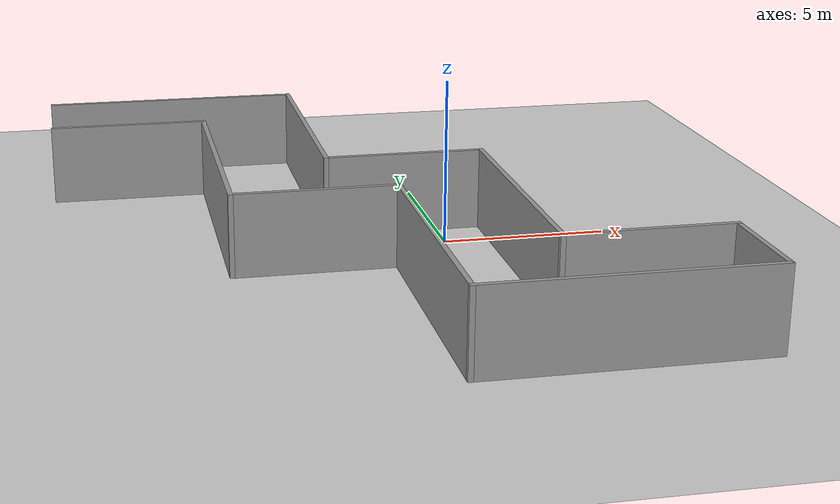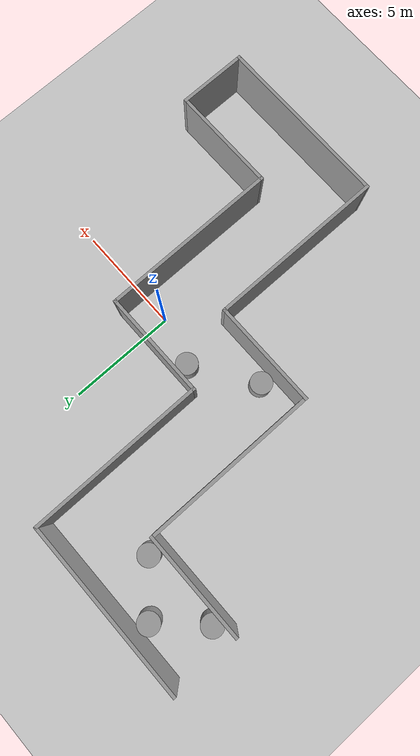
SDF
<sdf version="1.6">
 <world name="default">
  <light name="sun" type="directional">
   <pose>0 0 10 0 -0 0</pose>
   <diffuse>0.8 0.8 0.8 1</diffuse>
   <specular>0.2 0.2 0.2 1</specular>
   <attenuation>
    <range>1000</range>
    <constant>0.9</constant>
    <linear>0.01</linear>
    <quadratic>0.001</quadratic>
   </attenuation>
   <direction>-0.5 0.1 -0.9</direction>
  </light>
  <model name="ground_plane">
   <static>1</static>
   <link name="link">
    <collision name="collision">
     <geometry><plane><normal>0 0 1</normal><size>100 100</size></plane></geometry>
     <surface><friction><ode><mu>100</mu><mu2>50</mu2></ode></friction></surface>
    </collision>
    <visual name="visual">
     <cast_shadows>0</cast_shadows>
     <geometry><plane><normal>0 0 1</normal><size>100 100</size></plane></geometry>
     <material>
      <script><uri>file://media/materials/scripts/gazebo.material</uri><name>Gazebo/Grey</name></script>
     </material>
    </visual>
   </link>
  </model>
  <gravity>0 0 -9.8</gravity>
  <magnetic_field>6e-06 2.3e-05 -4.2e-05</magnetic_field>
  <atmosphere type="adiabatic"/>
  <physics name="default_physics" default="0" type="ode">
   <max_step_size>0.001</max_step_size>
   <real_time_factor>1</real_time_factor>
   <real_time_update_rate>1000</real_time_update_rate>
  </physics>
  <scene><ambient>0.4 0.4 0.4 1</ambient><background>0.7 0.7 0.7 1</background><shadows>1</shadows></scene>
  <spherical_coordinates>
   <surface_model>EARTH_WGS84</surface_model>
   <latitude_deg>0</latitude_deg>
   <longitude_deg>0</longitude_deg>
   <elevation>0</elevation>
   <heading_deg>0</heading_deg>
  </spherical_coordinates>
  <model name="zigzagwall">
   <pose>-2.62 -0.29 0 0 -0 0</pose>
   <link name="Wall_0">
    <collision name="Wall_0_Collision">
     <geometry><box><size>8.25 0.15 2.5</size></box></geometry>
     <pose>0 0 1.25 0 -0 0</pose>
    </collision>
    <visual name="Wall_0_Visual">
     <pose>0 0 1.25 0 -0 0</pose>
     <geometry><box><size>8.25 0.15 2.5</size></box></geometry>
     <material>
      <script><uri>file://media/materials/scripts/gazebo.material</uri><name>Gazebo/Grey</name></script>
      <ambient>1 1 1 1</ambient>
     </material>
     <meta><layer>0</layer></meta>
    </visual>
    <pose>4.85 -9.65 0 0 -0 3.14159</pose>
   </link>
   <link name="Wall_1">
    <collision name="Wall_1_Collision">
     <geometry><box><size>8.25 0.15 2.5</size></box></geometry>
     <pose>0 0 1.25 0 -0 0</pose>
    </collision>
    <visual name="Wall_1_Visual">
     <pose>0 0 1.25 0 -0 0</pose>
     <geometry><box><size>8.25 0.15 2.5</size></box></geometry>
     <material>
      <script><uri>file://media/materials/scripts/gazebo.material</uri><name>Gazebo/Grey</name></script>
      <ambient>1 1 1 1</ambient>
     </material>
     <meta><layer>0</layer></meta>
    </visual>
    <pose>0.8 -5.6 0 0 -0 1.5708</pose>
   </link>
   <link name="Wall_10">
    <collision name="Wall_10_Collision">
     <geometry><box><size>8.25 0.15 2.5</size></box></geometry>
     <pose>0 0 1.25 0 -0 0</pose>
    </collision>
    <visual name="Wall_10_Visual">
     <pose>0 0 1.25 0 -0 0</pose>
     <geometry><box><size>8.25 0.15 2.5</size></box></geometry>
     <material>
      <script><uri>file://media/materials/scripts/gazebo.material</uri><name>Gazebo/Grey</name></script>
      <ambient>1 1 1 1</ambient>
     </material>
     <meta><layer>0</layer></meta>
    </visual>
    <pose>-0.8 5.6 0 0 -0 1.5708</pose>
   </link>
   <link name="Wall_11">
    <collision name="Wall_11_Collision">
     <geometry><box><size>8.25 0.15 2.5</size></box></geometry>
     <pose>0 0 1.25 0 -0 0</pose>
    </collision>
    <visual name="Wall_11_Visual">
     <pose>0 0 1.25 0 -0 0</pose>
     <geometry><box><size>8.25 0.15 2.5</size></box></geometry>
     <material>
      <script><uri>file://media/materials/scripts/gazebo.material</uri><name>Gazebo/Grey</name></script>
      <ambient>1 1 1 1</ambient>
     </material>
     <meta><layer>0</layer></meta>
    </visual>
    <pose>-4.85 9.65 0 0 -0 3.14159</pose>
   </link>
   <link name="Wall_2">
    <collision name="Wall_2_Collision">
     <geometry><box><size>5 0.15 2.5</size></box></geometry>
     <pose>0 0 1.25 0 -0 0</pose>
    </collision>
    <visual name="Wall_2_Visual">
     <pose>0 0 1.25 0 -0 0</pose>
     <geometry><box><size>5 0.15 2.5</size></box></geometry>
     <material>
      <script><uri>file://media/materials/scripts/gazebo.material</uri><name>Gazebo/Grey</name></script>
      <ambient>1 1 1 1</ambient>
     </material>
     <meta><layer>0</layer></meta>
    </visual>
    <pose>-1.625 -1.55 0 0 -0 3.14159</pose>
   </link>
   <link name="Wall_3">
    <collision name="Wall_3_Collision">
     <geometry><box><size>8.25 0.15 2.5</size></box></geometry>
     <pose>0 0 1.25 0 -0 0</pose>
    </collision>
    <visual name="Wall_3_Visual">
     <pose>0 0 1.25 0 -0 0</pose>
     <geometry><box><size>8.25 0.15 2.5</size></box></geometry>
     <material>
      <script><uri>file://media/materials/scripts/gazebo.material</uri><name>Gazebo/Grey</name></script>
      <ambient>1 1 1 1</ambient>
     </material>
     <meta><layer>0</layer></meta>
    </visual>
    <pose>-4.05 2.5 0 0 -0 1.5708</pose>
   </link>
   <link name="Wall_4">
    <collision name="Wall_4_Collision">
     <geometry><box><size>5 0.15 2.5</size></box></geometry>
     <pose>0 0 1.25 0 -0 0</pose>
    </collision>
    <visual name="Wall_4_Visual">
     <pose>0 0 1.25 0 -0 0</pose>
     <geometry><box><size>5 0.15 2.5</size></box></geometry>
     <material>
      <script><uri>file://media/materials/scripts/gazebo.material</uri><name>Gazebo/Grey</name></script>
      <ambient>1 1 1 1</ambient>
     </material>
     <meta><layer>0</layer></meta>
    </visual>
    <pose>-6.475 6.55 0 0 -0 3.14159</pose>
   </link>
   <link name="Wall_6">
    <collision name="Wall_6_Collision">
     <geometry><box><size>3.25 0.15 2.5</size></box></geometry>
     <pose>0 0 1.25 0 -0 0</pose>
    </collision>
    <visual name="Wall_6_Visual">
     <pose>0 0 1.25 0 -0 0</pose>
     <geometry><box><size>3.25 0.15 2.5</size></box></geometry>
     <material>
      <script><uri>file://media/materials/scripts/gazebo.material</uri><name>Gazebo/Grey</name></script>
      <ambient>1 1 1 1</ambient>
     </material>
     <meta><layer>0</layer></meta>
    </visual>
    <pose>8.9 -8.1 0 0 -0 1.5708</pose>
   </link>
   <link name="Wall_7">
    <collision name="Wall_7_Collision">
     <geometry><box><size>5 0.15 2.5</size></box></geometry>
     <pose>0 0 1.25 0 -0 0</pose>
    </collision>
    <visual name="Wall_7_Visual">
     <pose>0 0 1.25 0 -0 0</pose>
     <geometry><box><size>5 0.15 2.5</size></box></geometry>
     <material>
      <script><uri>file://media/materials/scripts/gazebo.material</uri><name>Gazebo/Grey</name></script>
      <ambient>1 1 1 1</ambient>
     </material>
     <meta><layer>0</layer></meta>
    </visual>
    <pose>6.475 -6.55 0 0 -0 3.14159</pose>
   </link>
   <link name="Wall_8">
    <collision name="Wall_8_Collision">
     <geometry><box><size>8.25 0.15 2.5</size></box></geometry>
     <pose>0 0 1.25 0 -0 0</pose>
    </collision>
    <visual name="Wall_8_Visual">
     <pose>0 0 1.25 0 -0 0</pose>
     <geometry><box><size>8.25 0.15 2.5</size></box></geometry>
     <material>
      <script><uri>file://media/materials/scripts/gazebo.material</uri><name>Gazebo/Grey</name></script>
      <ambient>1 1 1 1</ambient>
     </material>
     <meta><layer>0</layer></meta>
    </visual>
    <pose>4.05 -2.5 0 0 -0 1.5708</pose>
   </link>
   <link name="Wall_9">
    <collision name="Wall_9_Collision">
     <geometry><box><size>5 0.15 2.5</size></box></geometry>
     <pose>0 0 1.25 0 -0 0</pose>
    </collision>
    <visual name="Wall_9_Visual">
     <pose>0 0 1.25 0 -0 0</pose>
     <geometry><box><size>5 0.15 2.5</size></box></geometry>
     <material>
      <script><uri>file://media/materials/scripts/gazebo.material</uri><name>Gazebo/Grey</name></script>
      <ambient>1 1 1 1</ambient>
     </material>
     <meta><layer>0</layer></meta>
    </visual>
    <pose>1.625 1.55 0 0 -0 3.14159</pose>
   </link>
   <static>1</static>
  </model>
  <model name="unit_cylinder">
   <pose>-4.95765 -1.15851 0.499992 -3e-06 -4e-06 -0</pose>
   <link name="link">
    <inertial>
     <mass>1</mass>
     <inertia><ixx>0.145833</ixx><ixy>0</ixy><ixz>0</ixz><iyy>0.145833</iyy><iyz>0</iyz><izz>0.125</izz></inertia>
    </inertial>
    <collision name="collision">
     <geometry><cylinder><radius>0.5</radius><length>1</length></cylinder></geometry>
    </collision>
    <visual name="visual">
     <geometry><cylinder><radius>0.5</radius><length>1</length></cylinder></geometry>
     <material>
      <script><name>Gazebo/Grey</name><uri>file://media/materials/scripts/gazebo.material</uri></script>
     </material>
    </visual>
   </link>
  </model>
  <model name="unit_cylinder_0">
   <pose>-2.24153 0.651189 0.499993 -3e-06 -3e-06 0</pose>
   <link name="link">
    <inertial>
     <mass>1</mass>
     <inertia><ixx>0.145833</ixx><ixy>0</ixy><ixz>0</ixz><iyy>0.145833</iyy><iyz>0</iyz><izz>0.125</izz></inertia>
    </inertial>
    <collision name="collision">
     <geometry><cylinder><radius>0.5</radius><length>1</length></cylinder></geometry>
    </collision>
    <visual name="visual">
     <geometry><cylinder><radius>0.5</radius><length>1</length></cylinder></geometry>
     <material>
      <script><name>Gazebo/Grey</name><uri>file://media/materials/scripts/gazebo.material</uri></script>
     </material>
    </visual>
   </link>
  </model>
  <model name="unit_cylinder_1">
   <pose>-10.853 6.84128 0.499997 3e-06 4e-06 -0</pose>
   <link name="link">
    <inertial>
     <mass>1</mass>
     <inertia><ixx>0.145833</ixx><ixy>0</ixy><ixz>0</ixz><iyy>0.145833</iyy><iyz>0</iyz><izz>0.125</izz></inertia>
    </inertial>
    <collision name="collision">
     <geometry><cylinder><radius>0.5</radius><length>1</length></cylinder></geometry>
    </collision>
    <visual name="visual">
     <geometry><cylinder><radius>0.5</radius><length>1</length></cylinder></geometry>
     <material>
      <script><name>Gazebo/Grey</name><uri>file://media/materials/scripts/gazebo.material</uri></script>
     </material>
    </visual>
   </link>
  </model>
  <model name="unit_cylinder_2">
   <pose>-7.1252 6.97669 0.499993 -3e-06 -4e-06 -0</pose>
   <link name="link">
    <inertial>
     <mass>1</mass>
     <inertia><ixx>0.145833</ixx><ixy>0</ixy><ixz>0</ixz><iyy>0.145833</iyy><iyz>0</iyz><izz>0.125</izz></inertia>
    </inertial>
    <collision name="collision">
     <geometry><cylinder><radius>0.5</radius><length>1</length></cylinder></geometry>
    </collision>
    <visual name="visual">
     <geometry><cylinder><radius>0.5</radius><length>1</length></cylinder></geometry>
     <material>
      <script><name>Gazebo/Grey</name><uri>file://media/materials/scripts/gazebo.material</uri></script>
     </material>
    </visual>
   </link>
  </model>
  <model name="unit_cylinder_3">
   <pose>-9.10944 8.6898 0.499997 3e-06 4e-06 -0</pose>
   <link name="link">
    <inertial>
     <mass>1</mass>
     <inertia><ixx>0.145833</ixx><ixy>0</ixy><ixz>0</ixz><iyy>0.145833</iyy><iyz>0</iyz><izz>0.125</izz></inertia>
    </inertial>
    <collision name="collision">
     <geometry><cylinder><radius>0.5</radius><length>1</length></cylinder></geometry>
    </collision>
    <visual name="visual">
     <geometry><cylinder><radius>0.5</radius><length>1</length></cylinder></geometry>
     <material>
      <script><name>Gazebo/Grey</name><uri>file://media/materials/scripts/gazebo.material</uri></script>
     </material>
    </visual>
   </link>
  </model>
 </world>
</sdf>
